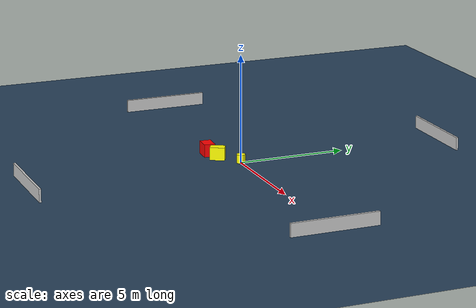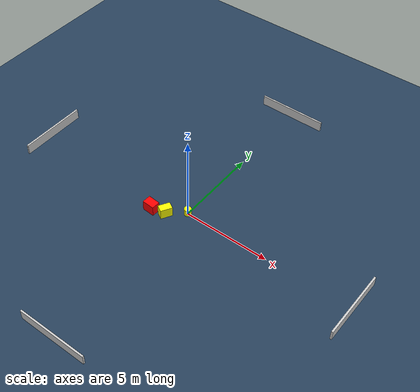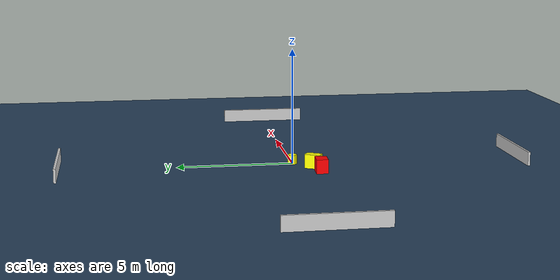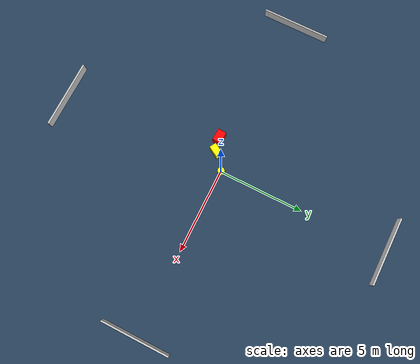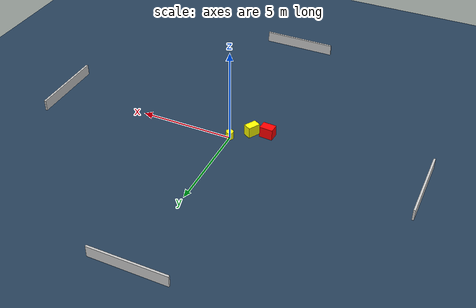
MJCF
<?xml version="1.0" ?>
<mujoco model="generated_environment">
  <option timestep="0.01" integrator="RK4" cone="elliptic"/>
  <default>
    <geom density="1"/>
  </default>
  <asset>
    <texture builtin="gradient" height="3072" name="skybox" rgb1="0.3 0.5 0.7" rgb2="0 0 0" type="skybox" width="512"/>
    <texture builtin="checker" height="300" name="groundplane" rgb1="0.2 0.3 0.4" rgb2="0.1 0.2 0.3" type="2d" width="300"/>
    <material name="groundplane" reflectance="0.2" texrepeat="5 5" texture="groundplane"/>
  </asset>
  <worldbody>
    <light dir="0 0 -1" directional="true" pos="0 0 1.5"/>
    <geom condim="3" friction="0.5 0.005 0.001" material="groundplane" name="floor" pos="0 0 0" size="0 0 0.05" type="plane"/>
    <body name="walls">
      <geom name="wall_1" condim="4" pos="-10.0 0.0 0.3" rgba="0.800000011920929 0.800000011920929 0.800000011920929 1.0" size="0.05 2.0 0.3" type="box"/>
      <geom name="wall_2" condim="4" pos="10.0 0.0 0.3" rgba="0.800000011920929 0.800000011920929 0.800000011920929 1.0" size="0.05 2.0 0.3" type="box"/>
      <geom name="wall_3" condim="4" pos="0.0 -10.0 0.3" rgba="0.800000011920929 0.800000011920929 0.800000011920929 1.0" size="2.0 0.05 0.3" type="box"/>
      <geom name="wall_4" condim="4" pos="0.0 10.0 0.3" rgba="0.800000011920929 0.800000011920929 0.800000011920929 1.0" size="2.0 0.05 0.3" type="box"/>
    </body>
    <body name="robot">
      <joint name="joint_x" type="slide" pos="0 0 0" axis="1 0 0"/>
      <joint name="joint_y" type="slide" pos="0 0 0" axis="0 1 0"/>
      <geom name="robot" type="cylinder" pos="0.0 0.0 0.2" size="0.2 0.2 0.0" mass="5.0" friction="1.0 0.005 0.0001" condim="4" rgba="1.0 1.0 0.0 1.0"/>
    </body>
    <body name="obstacle_1_movable">
      <geom name="obstacle_1_movable" condim="4" pos="-0.9038689501301402 -0.7737552787232238 0.3" euler="0 0 60.055876146844184" friction="0.0 0.005 0.001" rgba="1.0 1.0 0.0 1.0" size="0.33961857355633684 0.21090080404934672 0.3" type="box" mass="0.1"/>
      <joint type="free"/>
    </body>
    <body name="obstacle_2_static">
      <geom name="obstacle_2_static" condim="4" pos="-1.7020750663438693 -0.9686395080021336 0.3" euler="0 0 356.6234021334091" friction="0.0 0.005 0.001" rgba="1.0 0.0 0.0 1.0" size="0.35341252710282434 0.25225033438838673 0.3" type="box"/>
    </body>
  </worldbody>
  <actuator>
    <motor name="actuator_x" joint="joint_x" gear="1" ctrlrange="-1 1"/>
    <motor name="actuator_y" joint="joint_y" gear="1" ctrlrange="-1 1"/>
  </actuator>
</mujoco>
